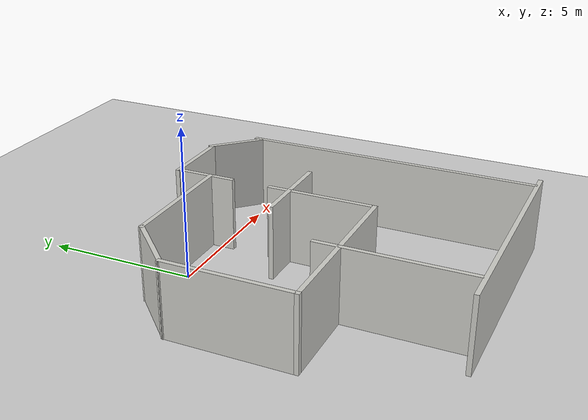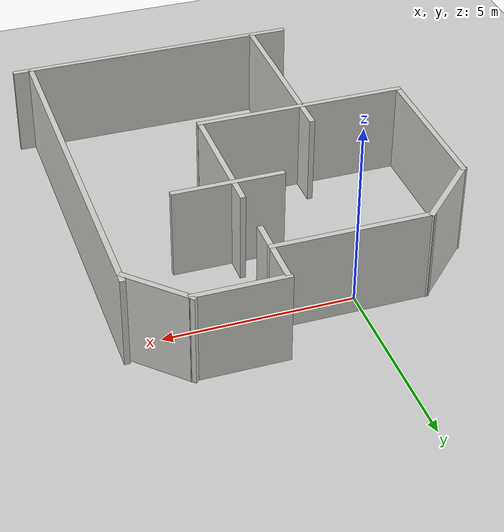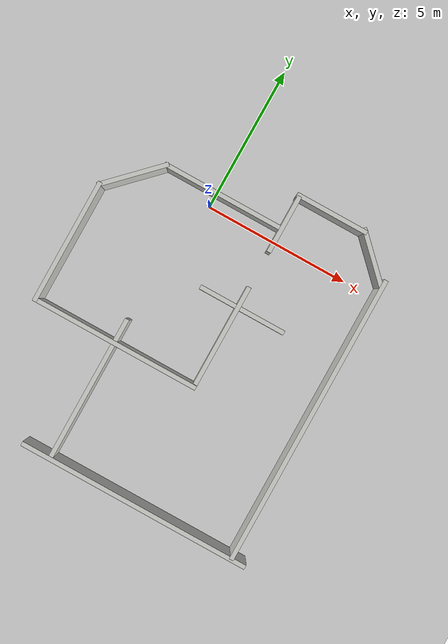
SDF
<sdf version="1.7">
 <world name="default">
  <model name="ground_plane">
   <static>1</static>
   <link name="link">
    <collision name="collision">
     <geometry><plane><normal>0 0 1</normal><size>100 100</size></plane></geometry>
     <surface>
      <contact><collide_bitmask>65535</collide_bitmask></contact>
      <friction><ode><mu>100</mu><mu2>50</mu2></ode></friction>
     </surface>
    </collision>
    <visual name="visual">
     <cast_shadows>0</cast_shadows>
     <geometry><plane><normal>0 0 1</normal><size>100 100</size></plane></geometry>
     <material>
      <script><uri>file://media/materials/scripts/gazebo.material</uri><name>Gazebo/Grey</name></script>
     </material>
    </visual>
   </link>
  </model>
  <light name="sun" type="directional">
   <pose>0 0 10 0 -0 0</pose>
   <diffuse>0.8 0.8 0.8 1</diffuse>
   <specular>0.2 0.2 0.2 1</specular>
   <attenuation>
    <range>1000</range>
    <constant>0.9</constant>
    <linear>0.01</linear>
    <quadratic>0.001</quadratic>
   </attenuation>
   <direction>-0.5 0.1 -0.9</direction>
   <spot><inner_angle>0</inner_angle><outer_angle>0</outer_angle><falloff>0</falloff></spot>
  </light>
  <gravity>0 0 -9.81</gravity>
  <magnetic_field>6e-06 2.3e-05 -4.2e-05</magnetic_field>
  <atmosphere type="adiabatic"/>
  <physics type="ode">
   <max_step_size>0.001</max_step_size>
   <real_time_factor>1</real_time_factor>
   <real_time_update_rate>1000</real_time_update_rate>
  </physics>
  <scene><ambient>0.4 0.4 0.4 1</ambient><background>0.7 0.7 0.7 1</background><shadows>1</shadows></scene>
  <spherical_coordinates>
   <surface_model>EARTH_WGS84</surface_model>
   <latitude_deg>0</latitude_deg>
   <longitude_deg>0</longitude_deg>
   <elevation>0</elevation>
   <heading_deg>0</heading_deg>
  </spherical_coordinates>
  <model name="kitchen_no_sink_walls">
   <pose>-0.487707 -2.40386 0 0 -0 0</pose>
   <link name="Wall_0">
    <collision name="Wall_0_Collision">
     <geometry><box><size>4.27 0.15 2.5</size></box></geometry>
     <pose>0 0 1.25 0 -0 0</pose>
    </collision>
    <visual name="Wall_0_Visual">
     <pose>0 0 1.25 0 -0 0</pose>
     <geometry><box><size>4.27 0.15 2.5</size></box></geometry>
     <material>
      <script><uri>file://media/materials/scripts/gazebo.material</uri><name>Gazebo/CeilingTiled</name></script>
      <ambient>1 1 1 1</ambient>
     </material>
     <meta><layer>0</layer></meta>
    </visual>
    <pose>-2.82197 -0.790533 0 0 -0 1.5708</pose>
   </link>
   <link name="Wall_11">
    <collision name="Wall_11_Collision">
     <geometry><box><size>2.34557 0.15 2.5</size></box></geometry>
     <pose>0 0 1.25 0 -0 0</pose>
    </collision>
    <visual name="Wall_11_Visual">
     <pose>0 0 1.25 0 -0 0</pose>
     <geometry><box><size>2.34557 0.15 2.5</size></box></geometry>
     <material>
      <script><uri>file://media/materials/scripts/gazebo.material</uri><name>Gazebo/CeilingTiled</name></script>
      <ambient>1 1 1 1</ambient>
     </material>
     <meta><layer>0</layer></meta>
    </visual>
    <pose>-2.04447 2.04447 0 0 -0 0.783788</pose>
   </link>
   <link name="Wall_4">
    <collision name="Wall_4_Collision">
     <geometry><box><size>5.825 0.15 2.5</size></box></geometry>
     <pose>0 0 1.25 0 -0 0</pose>
    </collision>
    <visual name="Wall_4_Visual">
     <pose>0 0 1.25 0 -0 0</pose>
     <geometry><box><size>5.825 0.15 2.5</size></box></geometry>
     <material>
      <script><uri>file://media/materials/scripts/gazebo.material</uri><name>Gazebo/CeilingTiled</name></script>
      <ambient>1 1 1 1</ambient>
     </material>
     <meta><layer>0</layer></meta>
    </visual>
    <pose>0.015533 -2.85053 0 0 -0 0</pose>
   </link>
   <link name="Wall_7">
    <collision name="Wall_7_Collision">
     <geometry><box><size>3.5 0.15 2.5</size></box></geometry>
     <pose>-1 0 1.25 0 -0 0</pose>
    </collision>
    <visual name="Wall_7_Visual">
     <pose>-1 0 1.25 0 -0 0</pose>
     <geometry><box><size>3.5 0.15 2.5</size></box></geometry>
     <material>
      <script><uri>file://media/materials/scripts/gazebo.material</uri><name>Gazebo/CeilingTiled</name></script>
      <ambient>1 1 1 1</ambient>
     </material>
     <meta><layer>0</layer></meta>
    </visual>
    <pose>2.85303 -0.015533 0 0 -0 1.5708</pose>
   </link>
   <link name="Wall_8">
    <collision name="Wall_8_Collision">
     <geometry><box><size>2 0.15 2.5</size></box></geometry>
     <pose>3 0 1.25 0 -0 0</pose>
    </collision>
    <visual name="Wall_8_Visual">
     <pose>3 0 1.25 0 -0 0</pose>
     <geometry><box><size>2 0.15 2.5</size></box></geometry>
     <material>
      <script><uri>file://media/materials/scripts/gazebo.material</uri><name>Gazebo/CeilingTiled</name></script>
      <ambient>1 1 1 1</ambient>
     </material>
     <meta><layer>0</layer></meta>
    </visual>
    <pose>2.85303 -0.015533 0 0 -0 1.5708</pose>
   </link>
   <link name="Wall_9">
    <collision name="Wall_9_Collision">
     <geometry><box><size>4.27 0.15 2.5</size></box></geometry>
     <pose>0 0 1.25 0 -0 0</pose>
    </collision>
    <visual name="Wall_9_Visual">
     <pose>0 0 1.25 0 -0 0</pose>
     <geometry><box><size>4.27 0.15 2.5</size></box></geometry>
     <material>
      <script><uri>file://media/materials/scripts/gazebo.material</uri><name>Gazebo/CeilingTiled</name></script>
      <ambient>1 1 1 1</ambient>
     </material>
     <meta><layer>0</layer></meta>
    </visual>
    <pose>0.793033 2.81947 0 0 -0 3.14159</pose>
   </link>
   <link name="Wall_20">
    <collision name="Wall_20_Collision">
     <geometry><box><size>10 0.15 2.5</size></box></geometry>
     <pose>0 0 1.25 0 -0 0</pose>
    </collision>
    <visual name="Wall_20_Visual">
     <pose>0 0 1.25 0 -0 0</pose>
     <geometry><box><size>10 0.15 2.5</size></box></geometry>
     <material>
      <script><uri>file://media/materials/scripts/gazebo.material</uri><name>Gazebo/CeilingTiled</name></script>
      <ambient>1 1 1 1</ambient>
     </material>
     <meta><layer>0</layer></meta>
    </visual>
    <pose>6.5 -2.0 0 0 0 1.5708</pose>
   </link>
   <link name="Wall_21">
    <collision name="Wall_21_Collision">
     <geometry><box><size>2.5 0.15 2.5</size></box></geometry>
     <pose>0 0 1.25 0 -0 0</pose>
    </collision>
    <visual name="Wall_21_Visual">
     <pose>0 0 1.25 0 -0 0</pose>
     <geometry><box><size>2.5 0.15 2.5</size></box></geometry>
     <material>
      <script><uri>file://media/materials/scripts/gazebo.material</uri><name>Gazebo/CeilingTiled</name></script>
      <ambient>1 1 1 1</ambient>
     </material>
     <meta><layer>0</layer></meta>
    </visual>
    <pose>4 4.0 0 0 -0 0</pose>
   </link>
   <link name="Wall_22">
    <collision name="Wall_22_Collision">
     <geometry><box><size>2 0.15 2.5</size></box></geometry>
     <pose>0 0 1.25 0 -0 0</pose>
    </collision>
    <visual name="Wall_22_Visual">
     <pose>0 0 1.25 0 -0 0</pose>
     <geometry><box><size>2 0.15 2.5</size></box></geometry>
     <material>
      <script><uri>file://media/materials/scripts/gazebo.material</uri><name>Gazebo/CeilingTiled</name></script>
      <ambient>1 1 1 1</ambient>
     </material>
     <meta><layer>0</layer></meta>
    </visual>
    <pose>5.8 3.4 0 0 -0 -0.783788</pose>
   </link>
   <link name="Wall_23">
    <collision name="Wall_23_Collision">
     <geometry><box><size>8.0 0.15 2.5</size></box></geometry>
     <pose>0 0 1.25 0 -0 0</pose>
    </collision>
    <visual name="Wall_23_Visual">
     <pose>0 0 1.25 0 -0 0</pose>
     <geometry><box><size>8.0 0.15 2.5</size></box></geometry>
     <material>
      <script><uri>file://media/materials/scripts/gazebo.material</uri><name>Gazebo/CeilingTiled</name></script>
      <ambient>1 1 1 1</ambient>
     </material>
     <meta><layer>0</layer></meta>
    </visual>
    <pose>3 -7.0 0 0 -0 0</pose>
   </link>
   <link name="Wall_24">
    <collision name="Wall_24_Collision">
     <geometry><box><size>5 0.15 2.5</size></box></geometry>
     <pose>0 0 1.25 0 -0 0</pose>
    </collision>
    <visual name="Wall_24_Visual">
     <pose>0 0 1.25 0 -0 0</pose>
     <geometry><box><size>5 0.15 2.5</size></box></geometry>
     <material>
      <script><uri>file://media/materials/scripts/gazebo.material</uri><name>Gazebo/CeilingTiled</name></script>
      <ambient>1 1 1 1</ambient>
     </material>
     <meta><layer>0</layer></meta>
    </visual>
    <pose>0 -4.5 0 0 -0 1.5709</pose>
   </link>
   <link name="Wall_30">
    <collision name="Wall_30_Collision">
     <geometry><box><size>3.0 0.15 2.5</size></box></geometry>
     <pose>0 0 1.25 0 -0 0</pose>
    </collision>
    <visual name="Wall_30_Visual">
     <pose>0 0 1.25 0 -0 0</pose>
     <geometry><box><size>3.0 0.15 2.5</size></box></geometry>
     <material>
      <script><uri>file://media/materials/scripts/gazebo.material</uri><name>Gazebo/CeilingTiled</name></script>
      <ambient>1 1 1 1</ambient>
     </material>
     <meta><layer>0</layer></meta>
    </visual>
    <pose>3.0 0.0 0 0 -0 0</pose>
   </link>
   <static>1</static>
  </model>
  <plugin name="gazebo_link_attacher" filename="libgazebo_link_attacher.so"/>
 </world>
</sdf>
